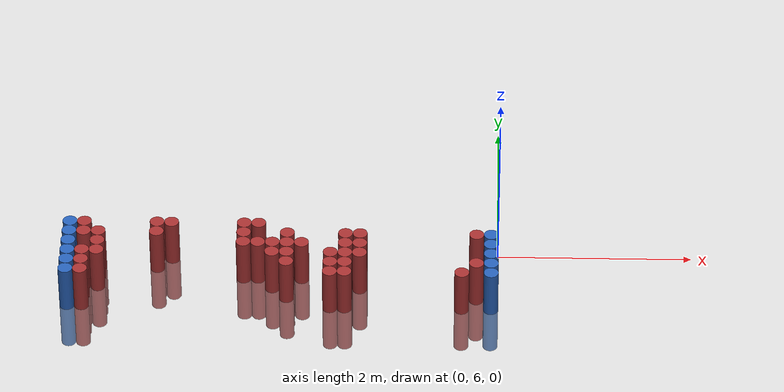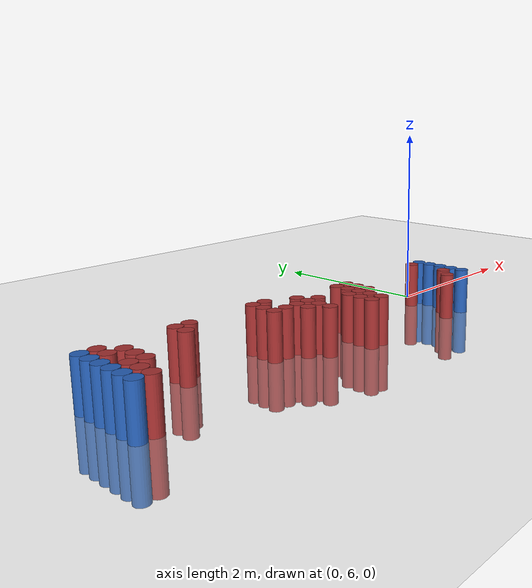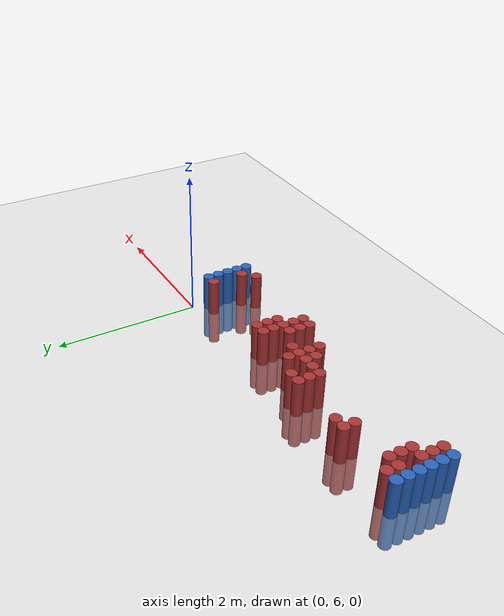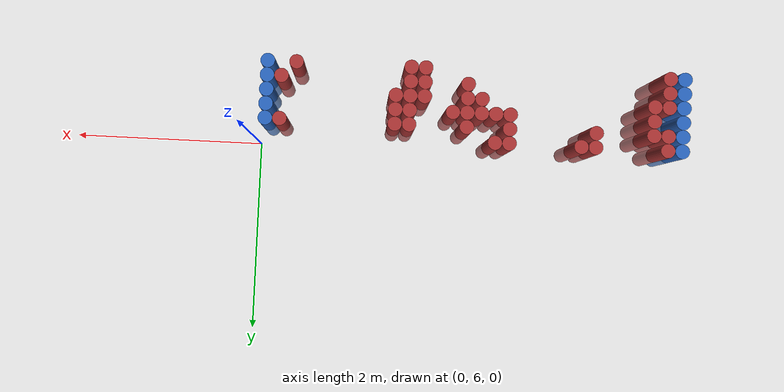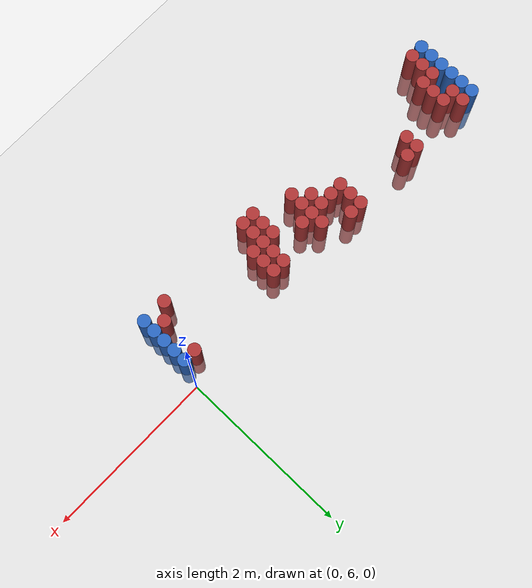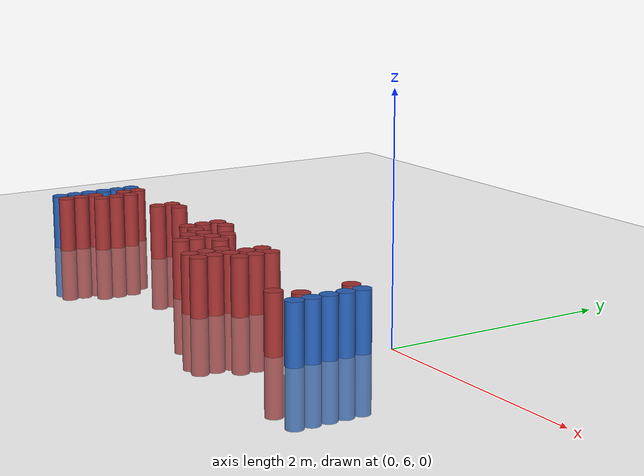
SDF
<sdf version="1.6">
 <world name="default">
  <model name="ground_plane">
   <static>1</static>
   <link name="link">
    <collision name="collision">
     <geometry><plane><normal>0 0 1</normal><size>100 100</size></plane></geometry>
     <surface><friction><ode><mu>100</mu><mu2>50</mu2></ode></friction></surface>
    </collision>
    <visual name="visual">
     <cast_shadows>0</cast_shadows>
     <geometry><plane><normal>0 0 1</normal><size>100 100</size></plane></geometry>
     <material>
      <script><uri>file://media/materials/scripts/gazebo.material</uri><name>Gazebo/Grey</name></script>
     </material>
    </visual>
   </link>
  </model>
  <model name="unit_cylinder_96">
   <static>1</static>
   <pose>-4.425000 5.175000 0.000000 0.000000 0.000000 0.000000</pose>
   <link name="link">
    <inertial>
     <mass>1</mass>
     <inertia><ixx>0.145833</ixx><ixy>0</ixy><ixz>0</ixz><iyy>0.145833</iyy><iyz>0</iyz><izz>0.125</izz></inertia>
    </inertial>
    <collision name="collision">
     <geometry><cylinder><radius>0.075000</radius><length>1</length></cylinder></geometry>
    </collision>
    <visual name="visual">
     <geometry><cylinder><radius>0.075000</radius><length>1</length></cylinder></geometry>
     <material>
      <ambient>0.152000 0.379000 0.720000 1</ambient>
      <diffuse>0.152000 0.379000 0.720000 1</diffuse>
     </material>
     <material>
      <script><name>Gazebo/Grey</name><uri>file://media/materials/scripts/gazebo.material</uri></script>
     </material>
    </visual>
   </link>
  </model>
  <model name="unit_cylinder_97">
   <static>1</static>
   <pose>-4.425000 5.325000 0.000000 0.000000 0.000000 0.000000</pose>
   <link name="link">
    <inertial>
     <mass>1</mass>
     <inertia><ixx>0.145833</ixx><ixy>0</ixy><ixz>0</ixz><iyy>0.145833</iyy><iyz>0</iyz><izz>0.125</izz></inertia>
    </inertial>
    <collision name="collision">
     <geometry><cylinder><radius>0.075000</radius><length>1</length></cylinder></geometry>
    </collision>
    <visual name="visual">
     <geometry><cylinder><radius>0.075000</radius><length>1</length></cylinder></geometry>
     <material>
      <ambient>0.152000 0.379000 0.720000 1</ambient>
      <diffuse>0.152000 0.379000 0.720000 1</diffuse>
     </material>
     <material>
      <script><name>Gazebo/Grey</name><uri>file://media/materials/scripts/gazebo.material</uri></script>
     </material>
    </visual>
   </link>
  </model>
  <model name="unit_cylinder_98">
   <static>1</static>
   <pose>-4.425000 5.475000 0.000000 0.000000 0.000000 0.000000</pose>
   <link name="link">
    <inertial>
     <mass>1</mass>
     <inertia><ixx>0.145833</ixx><ixy>0</ixy><ixz>0</ixz><iyy>0.145833</iyy><iyz>0</iyz><izz>0.125</izz></inertia>
    </inertial>
    <collision name="collision">
     <geometry><cylinder><radius>0.075000</radius><length>1</length></cylinder></geometry>
    </collision>
    <visual name="visual">
     <geometry><cylinder><radius>0.075000</radius><length>1</length></cylinder></geometry>
     <material>
      <ambient>0.152000 0.379000 0.720000 1</ambient>
      <diffuse>0.152000 0.379000 0.720000 1</diffuse>
     </material>
     <material>
      <script><name>Gazebo/Grey</name><uri>file://media/materials/scripts/gazebo.material</uri></script>
     </material>
    </visual>
   </link>
  </model>
  <model name="unit_cylinder_99">
   <static>1</static>
   <pose>-4.425000 5.625000 0.000000 0.000000 0.000000 0.000000</pose>
   <link name="link">
    <inertial>
     <mass>1</mass>
     <inertia><ixx>0.145833</ixx><ixy>0</ixy><ixz>0</ixz><iyy>0.145833</iyy><iyz>0</iyz><izz>0.125</izz></inertia>
    </inertial>
    <collision name="collision">
     <geometry><cylinder><radius>0.075000</radius><length>1</length></cylinder></geometry>
    </collision>
    <visual name="visual">
     <geometry><cylinder><radius>0.075000</radius><length>1</length></cylinder></geometry>
     <material>
      <ambient>0.152000 0.379000 0.720000 1</ambient>
      <diffuse>0.152000 0.379000 0.720000 1</diffuse>
     </material>
     <material>
      <script><name>Gazebo/Grey</name><uri>file://media/materials/scripts/gazebo.material</uri></script>
     </material>
    </visual>
   </link>
  </model>
  <model name="unit_cylinder_100">
   <static>1</static>
   <pose>-4.425000 5.775000 0.000000 0.000000 0.000000 0.000000</pose>
   <link name="link">
    <inertial>
     <mass>1</mass>
     <inertia><ixx>0.145833</ixx><ixy>0</ixy><ixz>0</ixz><iyy>0.145833</iyy><iyz>0</iyz><izz>0.125</izz></inertia>
    </inertial>
    <collision name="collision">
     <geometry><cylinder><radius>0.075000</radius><length>1</length></cylinder></geometry>
    </collision>
    <visual name="visual">
     <geometry><cylinder><radius>0.075000</radius><length>1</length></cylinder></geometry>
     <material>
      <ambient>0.152000 0.379000 0.720000 1</ambient>
      <diffuse>0.152000 0.379000 0.720000 1</diffuse>
     </material>
     <material>
      <script><name>Gazebo/Grey</name><uri>file://media/materials/scripts/gazebo.material</uri></script>
     </material>
    </visual>
   </link>
  </model>
  <model name="unit_cylinder_101">
   <static>1</static>
   <pose>-4.425000 5.925000 0.000000 0.000000 0.000000 0.000000</pose>
   <link name="link">
    <inertial>
     <mass>1</mass>
     <inertia><ixx>0.145833</ixx><ixy>0</ixy><ixz>0</ixz><iyy>0.145833</iyy><iyz>0</iyz><izz>0.125</izz></inertia>
    </inertial>
    <collision name="collision">
     <geometry><cylinder><radius>0.075000</radius><length>1</length></cylinder></geometry>
    </collision>
    <visual name="visual">
     <geometry><cylinder><radius>0.075000</radius><length>1</length></cylinder></geometry>
     <material>
      <ambient>0.152000 0.379000 0.720000 1</ambient>
      <diffuse>0.152000 0.379000 0.720000 1</diffuse>
     </material>
     <material>
      <script><name>Gazebo/Grey</name><uri>file://media/materials/scripts/gazebo.material</uri></script>
     </material>
    </visual>
   </link>
  </model>
  <model name="unit_cylinder_126">
   <static>1</static>
   <pose>-4.275000 5.175000 0.000000 0.000000 0.000000 0.000000</pose>
   <link name="link">
    <inertial>
     <mass>1</mass>
     <inertia><ixx>0.145833</ixx><ixy>0</ixy><ixz>0</ixz><iyy>0.145833</iyy><iyz>0</iyz><izz>0.125</izz></inertia>
    </inertial>
    <collision name="collision">
     <geometry><cylinder><radius>0.075000</radius><length>1</length></cylinder></geometry>
    </collision>
    <visual name="visual">
     <geometry><cylinder><radius>0.075000</radius><length>1</length></cylinder></geometry>
     <material>
      <ambient>0.648000 0.192000 0.192000 1</ambient>
      <diffuse>0.648000 0.192000 0.192000 1</diffuse>
     </material>
     <material>
      <script><name>Gazebo/Grey</name><uri>file://media/materials/scripts/gazebo.material</uri></script>
     </material>
    </visual>
   </link>
  </model>
  <model name="unit_cylinder_127">
   <static>1</static>
   <pose>-4.275000 5.325000 0.000000 0.000000 0.000000 0.000000</pose>
   <link name="link">
    <inertial>
     <mass>1</mass>
     <inertia><ixx>0.145833</ixx><ixy>0</ixy><ixz>0</ixz><iyy>0.145833</iyy><iyz>0</iyz><izz>0.125</izz></inertia>
    </inertial>
    <collision name="collision">
     <geometry><cylinder><radius>0.075000</radius><length>1</length></cylinder></geometry>
    </collision>
    <visual name="visual">
     <geometry><cylinder><radius>0.075000</radius><length>1</length></cylinder></geometry>
     <material>
      <ambient>0.648000 0.192000 0.192000 1</ambient>
      <diffuse>0.648000 0.192000 0.192000 1</diffuse>
     </material>
     <material>
      <script><name>Gazebo/Grey</name><uri>file://media/materials/scripts/gazebo.material</uri></script>
     </material>
    </visual>
   </link>
  </model>
  <model name="unit_cylinder_128">
   <static>1</static>
   <pose>-4.275000 5.475000 0.000000 0.000000 0.000000 0.000000</pose>
   <link name="link">
    <inertial>
     <mass>1</mass>
     <inertia><ixx>0.145833</ixx><ixy>0</ixy><ixz>0</ixz><iyy>0.145833</iyy><iyz>0</iyz><izz>0.125</izz></inertia>
    </inertial>
    <collision name="collision">
     <geometry><cylinder><radius>0.075000</radius><length>1</length></cylinder></geometry>
    </collision>
    <visual name="visual">
     <geometry><cylinder><radius>0.075000</radius><length>1</length></cylinder></geometry>
     <material>
      <ambient>0.648000 0.192000 0.192000 1</ambient>
      <diffuse>0.648000 0.192000 0.192000 1</diffuse>
     </material>
     <material>
      <script><name>Gazebo/Grey</name><uri>file://media/materials/scripts/gazebo.material</uri></script>
     </material>
    </visual>
   </link>
  </model>
  <model name="unit_cylinder_129">
   <static>1</static>
   <pose>-4.275000 5.775000 0.000000 0.000000 0.000000 0.000000</pose>
   <link name="link">
    <inertial>
     <mass>1</mass>
     <inertia><ixx>0.145833</ixx><ixy>0</ixy><ixz>0</ixz><iyy>0.145833</iyy><iyz>0</iyz><izz>0.125</izz></inertia>
    </inertial>
    <collision name="collision">
     <geometry><cylinder><radius>0.075000</radius><length>1</length></cylinder></geometry>
    </collision>
    <visual name="visual">
     <geometry><cylinder><radius>0.075000</radius><length>1</length></cylinder></geometry>
     <material>
      <ambient>0.648000 0.192000 0.192000 1</ambient>
      <diffuse>0.648000 0.192000 0.192000 1</diffuse>
     </material>
     <material>
      <script><name>Gazebo/Grey</name><uri>file://media/materials/scripts/gazebo.material</uri></script>
     </material>
    </visual>
   </link>
  </model>
  <model name="unit_cylinder_130">
   <static>1</static>
   <pose>-4.275000 5.925000 0.000000 0.000000 0.000000 0.000000</pose>
   <link name="link">
    <inertial>
     <mass>1</mass>
     <inertia><ixx>0.145833</ixx><ixy>0</ixy><ixz>0</ixz><iyy>0.145833</iyy><iyz>0</iyz><izz>0.125</izz></inertia>
    </inertial>
    <collision name="collision">
     <geometry><cylinder><radius>0.075000</radius><length>1</length></cylinder></geometry>
    </collision>
    <visual name="visual">
     <geometry><cylinder><radius>0.075000</radius><length>1</length></cylinder></geometry>
     <material>
      <ambient>0.648000 0.192000 0.192000 1</ambient>
      <diffuse>0.648000 0.192000 0.192000 1</diffuse>
     </material>
     <material>
      <script><name>Gazebo/Grey</name><uri>file://media/materials/scripts/gazebo.material</uri></script>
     </material>
    </visual>
   </link>
  </model>
  <model name="unit_cylinder_139">
   <static>1</static>
   <pose>-4.125000 5.475000 0.000000 0.000000 0.000000 0.000000</pose>
   <link name="link">
    <inertial>
     <mass>1</mass>
     <inertia><ixx>0.145833</ixx><ixy>0</ixy><ixz>0</ixz><iyy>0.145833</iyy><iyz>0</iyz><izz>0.125</izz></inertia>
    </inertial>
    <collision name="collision">
     <geometry><cylinder><radius>0.075000</radius><length>1</length></cylinder></geometry>
    </collision>
    <visual name="visual">
     <geometry><cylinder><radius>0.075000</radius><length>1</length></cylinder></geometry>
     <material>
      <ambient>0.648000 0.192000 0.192000 1</ambient>
      <diffuse>0.648000 0.192000 0.192000 1</diffuse>
     </material>
     <material>
      <script><name>Gazebo/Grey</name><uri>file://media/materials/scripts/gazebo.material</uri></script>
     </material>
    </visual>
   </link>
  </model>
  <model name="unit_cylinder_140">
   <static>1</static>
   <pose>-4.125000 5.625000 0.000000 0.000000 0.000000 0.000000</pose>
   <link name="link">
    <inertial>
     <mass>1</mass>
     <inertia><ixx>0.145833</ixx><ixy>0</ixy><ixz>0</ixz><iyy>0.145833</iyy><iyz>0</iyz><izz>0.125</izz></inertia>
    </inertial>
    <collision name="collision">
     <geometry><cylinder><radius>0.075000</radius><length>1</length></cylinder></geometry>
    </collision>
    <visual name="visual">
     <geometry><cylinder><radius>0.075000</radius><length>1</length></cylinder></geometry>
     <material>
      <ambient>0.648000 0.192000 0.192000 1</ambient>
      <diffuse>0.648000 0.192000 0.192000 1</diffuse>
     </material>
     <material>
      <script><name>Gazebo/Grey</name><uri>file://media/materials/scripts/gazebo.material</uri></script>
     </material>
    </visual>
   </link>
  </model>
  <model name="unit_cylinder_141">
   <static>1</static>
   <pose>-4.125000 5.775000 0.000000 0.000000 0.000000 0.000000</pose>
   <link name="link">
    <inertial>
     <mass>1</mass>
     <inertia><ixx>0.145833</ixx><ixy>0</ixy><ixz>0</ixz><iyy>0.145833</iyy><iyz>0</iyz><izz>0.125</izz></inertia>
    </inertial>
    <collision name="collision">
     <geometry><cylinder><radius>0.075000</radius><length>1</length></cylinder></geometry>
    </collision>
    <visual name="visual">
     <geometry><cylinder><radius>0.075000</radius><length>1</length></cylinder></geometry>
     <material>
      <ambient>0.648000 0.192000 0.192000 1</ambient>
      <diffuse>0.648000 0.192000 0.192000 1</diffuse>
     </material>
     <material>
      <script><name>Gazebo/Grey</name><uri>file://media/materials/scripts/gazebo.material</uri></script>
     </material>
    </visual>
   </link>
  </model>
  <model name="unit_cylinder_170">
   <static>1</static>
   <pose>-3.525000 5.775000 0.000000 0.000000 0.000000 0.000000</pose>
   <link name="link">
    <inertial>
     <mass>1</mass>
     <inertia><ixx>0.145833</ixx><ixy>0</ixy><ixz>0</ixz><iyy>0.145833</iyy><iyz>0</iyz><izz>0.125</izz></inertia>
    </inertial>
    <collision name="collision">
     <geometry><cylinder><radius>0.075000</radius><length>1</length></cylinder></geometry>
    </collision>
    <visual name="visual">
     <geometry><cylinder><radius>0.075000</radius><length>1</length></cylinder></geometry>
     <material>
      <ambient>0.648000 0.192000 0.192000 1</ambient>
      <diffuse>0.648000 0.192000 0.192000 1</diffuse>
     </material>
     <material>
      <script><name>Gazebo/Grey</name><uri>file://media/materials/scripts/gazebo.material</uri></script>
     </material>
    </visual>
   </link>
  </model>
  <model name="unit_cylinder_171">
   <static>1</static>
   <pose>-3.525000 5.925000 0.000000 0.000000 0.000000 0.000000</pose>
   <link name="link">
    <inertial>
     <mass>1</mass>
     <inertia><ixx>0.145833</ixx><ixy>0</ixy><ixz>0</ixz><iyy>0.145833</iyy><iyz>0</iyz><izz>0.125</izz></inertia>
    </inertial>
    <collision name="collision">
     <geometry><cylinder><radius>0.075000</radius><length>1</length></cylinder></geometry>
    </collision>
    <visual name="visual">
     <geometry><cylinder><radius>0.075000</radius><length>1</length></cylinder></geometry>
     <material>
      <ambient>0.648000 0.192000 0.192000 1</ambient>
      <diffuse>0.648000 0.192000 0.192000 1</diffuse>
     </material>
     <material>
      <script><name>Gazebo/Grey</name><uri>file://media/materials/scripts/gazebo.material</uri></script>
     </material>
    </visual>
   </link>
  </model>
  <model name="unit_cylinder_184">
   <static>1</static>
   <pose>-3.375000 5.925000 0.000000 0.000000 0.000000 0.000000</pose>
   <link name="link">
    <inertial>
     <mass>1</mass>
     <inertia><ixx>0.145833</ixx><ixy>0</ixy><ixz>0</ixz><iyy>0.145833</iyy><iyz>0</iyz><izz>0.125</izz></inertia>
    </inertial>
    <collision name="collision">
     <geometry><cylinder><radius>0.075000</radius><length>1</length></cylinder></geometry>
    </collision>
    <visual name="visual">
     <geometry><cylinder><radius>0.075000</radius><length>1</length></cylinder></geometry>
     <material>
      <ambient>0.648000 0.192000 0.192000 1</ambient>
      <diffuse>0.648000 0.192000 0.192000 1</diffuse>
     </material>
     <material>
      <script><name>Gazebo/Grey</name><uri>file://media/materials/scripts/gazebo.material</uri></script>
     </material>
    </visual>
   </link>
  </model>
  <model name="unit_cylinder_213">
   <static>1</static>
   <pose>-2.625000 5.625000 0.000000 0.000000 0.000000 0.000000</pose>
   <link name="link">
    <inertial>
     <mass>1</mass>
     <inertia><ixx>0.145833</ixx><ixy>0</ixy><ixz>0</ixz><iyy>0.145833</iyy><iyz>0</iyz><izz>0.125</izz></inertia>
    </inertial>
    <collision name="collision">
     <geometry><cylinder><radius>0.075000</radius><length>1</length></cylinder></geometry>
    </collision>
    <visual name="visual">
     <geometry><cylinder><radius>0.075000</radius><length>1</length></cylinder></geometry>
     <material>
      <ambient>0.648000 0.192000 0.192000 1</ambient>
      <diffuse>0.648000 0.192000 0.192000 1</diffuse>
     </material>
     <material>
      <script><name>Gazebo/Grey</name><uri>file://media/materials/scripts/gazebo.material</uri></script>
     </material>
    </visual>
   </link>
  </model>
  <model name="unit_cylinder_214">
   <static>1</static>
   <pose>-2.625000 5.775000 0.000000 0.000000 0.000000 0.000000</pose>
   <link name="link">
    <inertial>
     <mass>1</mass>
     <inertia><ixx>0.145833</ixx><ixy>0</ixy><ixz>0</ixz><iyy>0.145833</iyy><iyz>0</iyz><izz>0.125</izz></inertia>
    </inertial>
    <collision name="collision">
     <geometry><cylinder><radius>0.075000</radius><length>1</length></cylinder></geometry>
    </collision>
    <visual name="visual">
     <geometry><cylinder><radius>0.075000</radius><length>1</length></cylinder></geometry>
     <material>
      <ambient>0.648000 0.192000 0.192000 1</ambient>
      <diffuse>0.648000 0.192000 0.192000 1</diffuse>
     </material>
     <material>
      <script><name>Gazebo/Grey</name><uri>file://media/materials/scripts/gazebo.material</uri></script>
     </material>
    </visual>
   </link>
  </model>
  <model name="unit_cylinder_215">
   <static>1</static>
   <pose>-2.625000 5.925000 0.000000 0.000000 0.000000 0.000000</pose>
   <link name="link">
    <inertial>
     <mass>1</mass>
     <inertia><ixx>0.145833</ixx><ixy>0</ixy><ixz>0</ixz><iyy>0.145833</iyy><iyz>0</iyz><izz>0.125</izz></inertia>
    </inertial>
    <collision name="collision">
     <geometry><cylinder><radius>0.075000</radius><length>1</length></cylinder></geometry>
    </collision>
    <visual name="visual">
     <geometry><cylinder><radius>0.075000</radius><length>1</length></cylinder></geometry>
     <material>
      <ambient>0.648000 0.192000 0.192000 1</ambient>
      <diffuse>0.648000 0.192000 0.192000 1</diffuse>
     </material>
     <material>
      <script><name>Gazebo/Grey</name><uri>file://media/materials/scripts/gazebo.material</uri></script>
     </material>
    </visual>
   </link>
  </model>
  <model name="unit_cylinder_226">
   <static>1</static>
   <pose>-2.475000 5.625000 0.000000 0.000000 0.000000 0.000000</pose>
   <link name="link">
    <inertial>
     <mass>1</mass>
     <inertia><ixx>0.145833</ixx><ixy>0</ixy><ixz>0</ixz><iyy>0.145833</iyy><iyz>0</iyz><izz>0.125</izz></inertia>
    </inertial>
    <collision name="collision">
     <geometry><cylinder><radius>0.075000</radius><length>1</length></cylinder></geometry>
    </collision>
    <visual name="visual">
     <geometry><cylinder><radius>0.075000</radius><length>1</length></cylinder></geometry>
     <material>
      <ambient>0.648000 0.192000 0.192000 1</ambient>
      <diffuse>0.648000 0.192000 0.192000 1</diffuse>
     </material>
     <material>
      <script><name>Gazebo/Grey</name><uri>file://media/materials/scripts/gazebo.material</uri></script>
     </material>
    </visual>
   </link>
  </model>
  <model name="unit_cylinder_227">
   <static>1</static>
   <pose>-2.475000 5.925000 0.000000 0.000000 0.000000 0.000000</pose>
   <link name="link">
    <inertial>
     <mass>1</mass>
     <inertia><ixx>0.145833</ixx><ixy>0</ixy><ixz>0</ixz><iyy>0.145833</iyy><iyz>0</iyz><izz>0.125</izz></inertia>
    </inertial>
    <collision name="collision">
     <geometry><cylinder><radius>0.075000</radius><length>1</length></cylinder></geometry>
    </collision>
    <visual name="visual">
     <geometry><cylinder><radius>0.075000</radius><length>1</length></cylinder></geometry>
     <material>
      <ambient>0.648000 0.192000 0.192000 1</ambient>
      <diffuse>0.648000 0.192000 0.192000 1</diffuse>
     </material>
     <material>
      <script><name>Gazebo/Grey</name><uri>file://media/materials/scripts/gazebo.material</uri></script>
     </material>
    </visual>
   </link>
  </model>
  <model name="unit_cylinder_238">
   <static>1</static>
   <pose>-2.325000 5.475000 0.000000 0.000000 0.000000 0.000000</pose>
   <link name="link">
    <inertial>
     <mass>1</mass>
     <inertia><ixx>0.145833</ixx><ixy>0</ixy><ixz>0</ixz><iyy>0.145833</iyy><iyz>0</iyz><izz>0.125</izz></inertia>
    </inertial>
    <collision name="collision">
     <geometry><cylinder><radius>0.075000</radius><length>1</length></cylinder></geometry>
    </collision>
    <visual name="visual">
     <geometry><cylinder><radius>0.075000</radius><length>1</length></cylinder></geometry>
     <material>
      <ambient>0.648000 0.192000 0.192000 1</ambient>
      <diffuse>0.648000 0.192000 0.192000 1</diffuse>
     </material>
     <material>
      <script><name>Gazebo/Grey</name><uri>file://media/materials/scripts/gazebo.material</uri></script>
     </material>
    </visual>
   </link>
  </model>
  <model name="unit_cylinder_239">
   <static>1</static>
   <pose>-2.325000 5.625000 0.000000 0.000000 0.000000 0.000000</pose>
   <link name="link">
    <inertial>
     <mass>1</mass>
     <inertia><ixx>0.145833</ixx><ixy>0</ixy><ixz>0</ixz><iyy>0.145833</iyy><iyz>0</iyz><izz>0.125</izz></inertia>
    </inertial>
    <collision name="collision">
     <geometry><cylinder><radius>0.075000</radius><length>1</length></cylinder></geometry>
    </collision>
    <visual name="visual">
     <geometry><cylinder><radius>0.075000</radius><length>1</length></cylinder></geometry>
     <material>
      <ambient>0.648000 0.192000 0.192000 1</ambient>
      <diffuse>0.648000 0.192000 0.192000 1</diffuse>
     </material>
     <material>
      <script><name>Gazebo/Grey</name><uri>file://media/materials/scripts/gazebo.material</uri></script>
     </material>
    </visual>
   </link>
  </model>
  <model name="unit_cylinder_244">
   <static>1</static>
   <pose>-2.175000 5.325000 0.000000 0.000000 0.000000 0.000000</pose>
   <link name="link">
    <inertial>
     <mass>1</mass>
     <inertia><ixx>0.145833</ixx><ixy>0</ixy><ixz>0</ixz><iyy>0.145833</iyy><iyz>0</iyz><izz>0.125</izz></inertia>
    </inertial>
    <collision name="collision">
     <geometry><cylinder><radius>0.075000</radius><length>1</length></cylinder></geometry>
    </collision>
    <visual name="visual">
     <geometry><cylinder><radius>0.075000</radius><length>1</length></cylinder></geometry>
     <material>
      <ambient>0.648000 0.192000 0.192000 1</ambient>
      <diffuse>0.648000 0.192000 0.192000 1</diffuse>
     </material>
     <material>
      <script><name>Gazebo/Grey</name><uri>file://media/materials/scripts/gazebo.material</uri></script>
     </material>
    </visual>
   </link>
  </model>
  <model name="unit_cylinder_245">
   <static>1</static>
   <pose>-2.175000 5.475000 0.000000 0.000000 0.000000 0.000000</pose>
   <link name="link">
    <inertial>
     <mass>1</mass>
     <inertia><ixx>0.145833</ixx><ixy>0</ixy><ixz>0</ixz><iyy>0.145833</iyy><iyz>0</iyz><izz>0.125</izz></inertia>
    </inertial>
    <collision name="collision">
     <geometry><cylinder><radius>0.075000</radius><length>1</length></cylinder></geometry>
    </collision>
    <visual name="visual">
     <geometry><cylinder><radius>0.075000</radius><length>1</length></cylinder></geometry>
     <material>
      <ambient>0.648000 0.192000 0.192000 1</ambient>
      <diffuse>0.648000 0.192000 0.192000 1</diffuse>
     </material>
     <material>
      <script><name>Gazebo/Grey</name><uri>file://media/materials/scripts/gazebo.material</uri></script>
     </material>
    </visual>
   </link>
  </model>
  <model name="unit_cylinder_246">
   <static>1</static>
   <pose>-2.175000 5.625000 0.000000 0.000000 0.000000 0.000000</pose>
   <link name="link">
    <inertial>
     <mass>1</mass>
     <inertia><ixx>0.145833</ixx><ixy>0</ixy><ixz>0</ixz><iyy>0.145833</iyy><iyz>0</iyz><izz>0.125</izz></inertia>
    </inertial>
    <collision name="collision">
     <geometry><cylinder><radius>0.075000</radius><length>1</length></cylinder></geometry>
    </collision>
    <visual name="visual">
     <geometry><cylinder><radius>0.075000</radius><length>1</length></cylinder></geometry>
     <material>
      <ambient>0.648000 0.192000 0.192000 1</ambient>
      <diffuse>0.648000 0.192000 0.192000 1</diffuse>
     </material>
     <material>
      <script><name>Gazebo/Grey</name><uri>file://media/materials/scripts/gazebo.material</uri></script>
     </material>
    </visual>
   </link>
  </model>
  <model name="unit_cylinder_247">
   <static>1</static>
   <pose>-2.175000 5.775000 0.000000 0.000000 0.000000 0.000000</pose>
   <link name="link">
    <inertial>
     <mass>1</mass>
     <inertia><ixx>0.145833</ixx><ixy>0</ixy><ixz>0</ixz><iyy>0.145833</iyy><iyz>0</iyz><izz>0.125</izz></inertia>
    </inertial>
    <collision name="collision">
     <geometry><cylinder><radius>0.075000</radius><length>1</length></cylinder></geometry>
    </collision>
    <visual name="visual">
     <geometry><cylinder><radius>0.075000</radius><length>1</length></cylinder></geometry>
     <material>
      <ambient>0.648000 0.192000 0.192000 1</ambient>
      <diffuse>0.648000 0.192000 0.192000 1</diffuse>
     </material>
     <material>
      <script><name>Gazebo/Grey</name><uri>file://media/materials/scripts/gazebo.material</uri></script>
     </material>
    </visual>
   </link>
  </model>
  <model name="unit_cylinder_253">
   <static>1</static>
   <pose>-2.025000 5.625000 0.000000 0.000000 0.000000 0.000000</pose>
   <link name="link">
    <inertial>
     <mass>1</mass>
     <inertia><ixx>0.145833</ixx><ixy>0</ixy><ixz>0</ixz><iyy>0.145833</iyy><iyz>0</iyz><izz>0.125</izz></inertia>
    </inertial>
    <collision name="collision">
     <geometry><cylinder><radius>0.075000</radius><length>1</length></cylinder></geometry>
    </collision>
    <visual name="visual">
     <geometry><cylinder><radius>0.075000</radius><length>1</length></cylinder></geometry>
     <material>
      <ambient>0.648000 0.192000 0.192000 1</ambient>
      <diffuse>0.648000 0.192000 0.192000 1</diffuse>
     </material>
     <material>
      <script><name>Gazebo/Grey</name><uri>file://media/materials/scripts/gazebo.material</uri></script>
     </material>
    </visual>
   </link>
  </model>
  <model name="unit_cylinder_260">
   <static>1</static>
   <pose>-1.725000 5.175000 0.000000 0.000000 0.000000 0.000000</pose>
   <link name="link">
    <inertial>
     <mass>1</mass>
     <inertia><ixx>0.145833</ixx><ixy>0</ixy><ixz>0</ixz><iyy>0.145833</iyy><iyz>0</iyz><izz>0.125</izz></inertia>
    </inertial>
    <collision name="collision">
     <geometry><cylinder><radius>0.075000</radius><length>1</length></cylinder></geometry>
    </collision>
    <visual name="visual">
     <geometry><cylinder><radius>0.075000</radius><length>1</length></cylinder></geometry>
     <material>
      <ambient>0.648000 0.192000 0.192000 1</ambient>
      <diffuse>0.648000 0.192000 0.192000 1</diffuse>
     </material>
     <material>
      <script><name>Gazebo/Grey</name><uri>file://media/materials/scripts/gazebo.material</uri></script>
     </material>
    </visual>
   </link>
  </model>
  <model name="unit_cylinder_261">
   <static>1</static>
   <pose>-1.725000 5.325000 0.000000 0.000000 0.000000 0.000000</pose>
   <link name="link">
    <inertial>
     <mass>1</mass>
     <inertia><ixx>0.145833</ixx><ixy>0</ixy><ixz>0</ixz><iyy>0.145833</iyy><iyz>0</iyz><izz>0.125</izz></inertia>
    </inertial>
    <collision name="collision">
     <geometry><cylinder><radius>0.075000</radius><length>1</length></cylinder></geometry>
    </collision>
    <visual name="visual">
     <geometry><cylinder><radius>0.075000</radius><length>1</length></cylinder></geometry>
     <material>
      <ambient>0.648000 0.192000 0.192000 1</ambient>
      <diffuse>0.648000 0.192000 0.192000 1</diffuse>
     </material>
     <material>
      <script><name>Gazebo/Grey</name><uri>file://media/materials/scripts/gazebo.material</uri></script>
     </material>
    </visual>
   </link>
  </model>
  <model name="unit_cylinder_262">
   <static>1</static>
   <pose>-1.725000 5.475000 0.000000 0.000000 0.000000 0.000000</pose>
   <link name="link">
    <inertial>
     <mass>1</mass>
     <inertia><ixx>0.145833</ixx><ixy>0</ixy><ixz>0</ixz><iyy>0.145833</iyy><iyz>0</iyz><izz>0.125</izz></inertia>
    </inertial>
    <collision name="collision">
     <geometry><cylinder><radius>0.075000</radius><length>1</length></cylinder></geometry>
    </collision>
    <visual name="visual">
     <geometry><cylinder><radius>0.075000</radius><length>1</length></cylinder></geometry>
     <material>
      <ambient>0.648000 0.192000 0.192000 1</ambient>
      <diffuse>0.648000 0.192000 0.192000 1</diffuse>
     </material>
     <material>
      <script><name>Gazebo/Grey</name><uri>file://media/materials/scripts/gazebo.material</uri></script>
     </material>
    </visual>
   </link>
  </model>
  <model name="unit_cylinder_263">
   <static>1</static>
   <pose>-1.575000 5.175000 0.000000 0.000000 0.000000 0.000000</pose>
   <link name="link">
    <inertial>
     <mass>1</mass>
     <inertia><ixx>0.145833</ixx><ixy>0</ixy><ixz>0</ixz><iyy>0.145833</iyy><iyz>0</iyz><izz>0.125</izz></inertia>
    </inertial>
    <collision name="collision">
     <geometry><cylinder><radius>0.075000</radius><length>1</length></cylinder></geometry>
    </collision>
    <visual name="visual">
     <geometry><cylinder><radius>0.075000</radius><length>1</length></cylinder></geometry>
     <material>
      <ambient>0.648000 0.192000 0.192000 1</ambient>
      <diffuse>0.648000 0.192000 0.192000 1</diffuse>
     </material>
     <material>
      <script><name>Gazebo/Grey</name><uri>file://media/materials/scripts/gazebo.material</uri></script>
     </material>
    </visual>
   </link>
  </model>
  <model name="unit_cylinder_264">
   <static>1</static>
   <pose>-1.575000 5.325000 0.000000 0.000000 0.000000 0.000000</pose>
   <link name="link">
    <inertial>
     <mass>1</mass>
     <inertia><ixx>0.145833</ixx><ixy>0</ixy><ixz>0</ixz><iyy>0.145833</iyy><iyz>0</iyz><izz>0.125</izz></inertia>
    </inertial>
    <collision name="collision">
     <geometry><cylinder><radius>0.075000</radius><length>1</length></cylinder></geometry>
    </collision>
    <visual name="visual">
     <geometry><cylinder><radius>0.075000</radius><length>1</length></cylinder></geometry>
     <material>
      <ambient>0.648000 0.192000 0.192000 1</ambient>
      <diffuse>0.648000 0.192000 0.192000 1</diffuse>
     </material>
     <material>
      <script><name>Gazebo/Grey</name><uri>file://media/materials/scripts/gazebo.material</uri></script>
     </material>
    </visual>
   </link>
  </model>
  <model name="unit_cylinder_265">
   <static>1</static>
   <pose>-1.575000 5.475000 0.000000 0.000000 0.000000 0.000000</pose>
   <link name="link">
    <inertial>
     <mass>1</mass>
     <inertia><ixx>0.145833</ixx><ixy>0</ixy><ixz>0</ixz><iyy>0.145833</iyy><iyz>0</iyz><izz>0.125</izz></inertia>
    </inertial>
    <collision name="collision">
     <geometry><cylinder><radius>0.075000</radius><length>1</length></cylinder></geometry>
    </collision>
    <visual name="visual">
     <geometry><cylinder><radius>0.075000</radius><length>1</length></cylinder></geometry>
     <material>
      <ambient>0.648000 0.192000 0.192000 1</ambient>
      <diffuse>0.648000 0.192000 0.192000 1</diffuse>
     </material>
     <material>
      <script><name>Gazebo/Grey</name><uri>file://media/materials/scripts/gazebo.material</uri></script>
     </material>
    </visual>
   </link>
  </model>
  <model name="unit_cylinder_266">
   <static>1</static>
   <pose>-1.575000 5.625000 0.000000 0.000000 0.000000 0.000000</pose>
   <link name="link">
    <inertial>
     <mass>1</mass>
     <inertia><ixx>0.145833</ixx><ixy>0</ixy><ixz>0</ixz><iyy>0.145833</iyy><iyz>0</iyz><izz>0.125</izz></inertia>
    </inertial>
    <collision name="collision">
     <geometry><cylinder><radius>0.075000</radius><length>1</length></cylinder></geometry>
    </collision>
    <visual name="visual">
     <geometry><cylinder><radius>0.075000</radius><length>1</length></cylinder></geometry>
     <material>
      <ambient>0.648000 0.192000 0.192000 1</ambient>
      <diffuse>0.648000 0.192000 0.192000 1</diffuse>
     </material>
     <material>
      <script><name>Gazebo/Grey</name><uri>file://media/materials/scripts/gazebo.material</uri></script>
     </material>
    </visual>
   </link>
  </model>
  <model name="unit_cylinder_267">
   <static>1</static>
   <pose>-1.575000 5.775000 0.000000 0.000000 0.000000 0.000000</pose>
   <link name="link">
    <inertial>
     <mass>1</mass>
     <inertia><ixx>0.145833</ixx><ixy>0</ixy><ixz>0</ixz><iyy>0.145833</iyy><iyz>0</iyz><izz>0.125</izz></inertia>
    </inertial>
    <collision name="collision">
     <geometry><cylinder><radius>0.075000</radius><length>1</length></cylinder></geometry>
    </collision>
    <visual name="visual">
     <geometry><cylinder><radius>0.075000</radius><length>1</length></cylinder></geometry>
     <material>
      <ambient>0.648000 0.192000 0.192000 1</ambient>
      <diffuse>0.648000 0.192000 0.192000 1</diffuse>
     </material>
     <material>
      <script><name>Gazebo/Grey</name><uri>file://media/materials/scripts/gazebo.material</uri></script>
     </material>
    </visual>
   </link>
  </model>
  <model name="unit_cylinder_268">
   <static>1</static>
   <pose>-1.425000 5.475000 0.000000 0.000000 0.000000 0.000000</pose>
   <link name="link">
    <inertial>
     <mass>1</mass>
     <inertia><ixx>0.145833</ixx><ixy>0</ixy><ixz>0</ixz><iyy>0.145833</iyy><iyz>0</iyz><izz>0.125</izz></inertia>
    </inertial>
    <collision name="collision">
     <geometry><cylinder><radius>0.075000</radius><length>1</length></cylinder></geometry>
    </collision>
    <visual name="visual">
     <geometry><cylinder><radius>0.075000</radius><length>1</length></cylinder></geometry>
     <material>
      <ambient>0.648000 0.192000 0.192000 1</ambient>
      <diffuse>0.648000 0.192000 0.192000 1</diffuse>
     </material>
     <material>
      <script><name>Gazebo/Grey</name><uri>file://media/materials/scripts/gazebo.material</uri></script>
     </material>
    </visual>
   </link>
  </model>
  <model name="unit_cylinder_269">
   <static>1</static>
   <pose>-1.425000 5.625000 0.000000 0.000000 0.000000 0.000000</pose>
   <link name="link">
    <inertial>
     <mass>1</mass>
     <inertia><ixx>0.145833</ixx><ixy>0</ixy><ixz>0</ixz><iyy>0.145833</iyy><iyz>0</iyz><izz>0.125</izz></inertia>
    </inertial>
    <collision name="collision">
     <geometry><cylinder><radius>0.075000</radius><length>1</length></cylinder></geometry>
    </collision>
    <visual name="visual">
     <geometry><cylinder><radius>0.075000</radius><length>1</length></cylinder></geometry>
     <material>
      <ambient>0.648000 0.192000 0.192000 1</ambient>
      <diffuse>0.648000 0.192000 0.192000 1</diffuse>
     </material>
     <material>
      <script><name>Gazebo/Grey</name><uri>file://media/materials/scripts/gazebo.material</uri></script>
     </material>
    </visual>
   </link>
  </model>
  <model name="unit_cylinder_270">
   <static>1</static>
   <pose>-1.425000 5.775000 0.000000 0.000000 0.000000 0.000000</pose>
   <link name="link">
    <inertial>
     <mass>1</mass>
     <inertia><ixx>0.145833</ixx><ixy>0</ixy><ixz>0</ixz><iyy>0.145833</iyy><iyz>0</iyz><izz>0.125</izz></inertia>
    </inertial>
    <collision name="collision">
     <geometry><cylinder><radius>0.075000</radius><length>1</length></cylinder></geometry>
    </collision>
    <visual name="visual">
     <geometry><cylinder><radius>0.075000</radius><length>1</length></cylinder></geometry>
     <material>
      <ambient>0.648000 0.192000 0.192000 1</ambient>
      <diffuse>0.648000 0.192000 0.192000 1</diffuse>
     </material>
     <material>
      <script><name>Gazebo/Grey</name><uri>file://media/materials/scripts/gazebo.material</uri></script>
     </material>
    </visual>
   </link>
  </model>
  <model name="unit_cylinder_284">
   <static>1</static>
   <pose>-0.375000 5.175000 0.000000 0.000000 0.000000 0.000000</pose>
   <link name="link">
    <inertial>
     <mass>1</mass>
     <inertia><ixx>0.145833</ixx><ixy>0</ixy><ixz>0</ixz><iyy>0.145833</iyy><iyz>0</iyz><izz>0.125</izz></inertia>
    </inertial>
    <collision name="collision">
     <geometry><cylinder><radius>0.075000</radius><length>1</length></cylinder></geometry>
    </collision>
    <visual name="visual">
     <geometry><cylinder><radius>0.075000</radius><length>1</length></cylinder></geometry>
     <material>
      <ambient>0.648000 0.192000 0.192000 1</ambient>
      <diffuse>0.648000 0.192000 0.192000 1</diffuse>
     </material>
     <material>
      <script><name>Gazebo/Grey</name><uri>file://media/materials/scripts/gazebo.material</uri></script>
     </material>
    </visual>
   </link>
  </model>
  <model name="unit_cylinder_293">
   <static>1</static>
   <pose>-0.225000 5.325000 0.000000 0.000000 0.000000 0.000000</pose>
   <link name="link">
    <inertial>
     <mass>1</mass>
     <inertia><ixx>0.145833</ixx><ixy>0</ixy><ixz>0</ixz><iyy>0.145833</iyy><iyz>0</iyz><izz>0.125</izz></inertia>
    </inertial>
    <collision name="collision">
     <geometry><cylinder><radius>0.075000</radius><length>1</length></cylinder></geometry>
    </collision>
    <visual name="visual">
     <geometry><cylinder><radius>0.075000</radius><length>1</length></cylinder></geometry>
     <material>
      <ambient>0.648000 0.192000 0.192000 1</ambient>
      <diffuse>0.648000 0.192000 0.192000 1</diffuse>
     </material>
     <material>
      <script><name>Gazebo/Grey</name><uri>file://media/materials/scripts/gazebo.material</uri></script>
     </material>
    </visual>
   </link>
  </model>
  <model name="unit_cylinder_294">
   <static>1</static>
   <pose>-0.225000 5.775000 0.000000 0.000000 0.000000 0.000000</pose>
   <link name="link">
    <inertial>
     <mass>1</mass>
     <inertia><ixx>0.145833</ixx><ixy>0</ixy><ixz>0</ixz><iyy>0.145833</iyy><iyz>0</iyz><izz>0.125</izz></inertia>
    </inertial>
    <collision name="collision">
     <geometry><cylinder><radius>0.075000</radius><length>1</length></cylinder></geometry>
    </collision>
    <visual name="visual">
     <geometry><cylinder><radius>0.075000</radius><length>1</length></cylinder></geometry>
     <material>
      <ambient>0.648000 0.192000 0.192000 1</ambient>
      <diffuse>0.648000 0.192000 0.192000 1</diffuse>
     </material>
     <material>
      <script><name>Gazebo/Grey</name><uri>file://media/materials/scripts/gazebo.material</uri></script>
     </material>
    </visual>
   </link>
  </model>
  <model name="unit_cylinder_308">
   <static>1</static>
   <pose>-0.075000 5.175000 0.000000 0.000000 0.000000 0.000000</pose>
   <link name="link">
    <inertial>
     <mass>1</mass>
     <inertia><ixx>0.145833</ixx><ixy>0</ixy><ixz>0</ixz><iyy>0.145833</iyy><iyz>0</iyz><izz>0.125</izz></inertia>
    </inertial>
    <collision name="collision">
     <geometry><cylinder><radius>0.075000</radius><length>1</length></cylinder></geometry>
    </collision>
    <visual name="visual">
     <geometry><cylinder><radius>0.075000</radius><length>1</length></cylinder></geometry>
     <material>
      <ambient>0.152000 0.379000 0.720000 1</ambient>
      <diffuse>0.152000 0.379000 0.720000 1</diffuse>
     </material>
     <material>
      <script><name>Gazebo/Grey</name><uri>file://media/materials/scripts/gazebo.material</uri></script>
     </material>
    </visual>
   </link>
  </model>
  <model name="unit_cylinder_309">
   <static>1</static>
   <pose>-0.075000 5.325000 0.000000 0.000000 0.000000 0.000000</pose>
   <link name="link">
    <inertial>
     <mass>1</mass>
     <inertia><ixx>0.145833</ixx><ixy>0</ixy><ixz>0</ixz><iyy>0.145833</iyy><iyz>0</iyz><izz>0.125</izz></inertia>
    </inertial>
    <collision name="collision">
     <geometry><cylinder><radius>0.075000</radius><length>1</length></cylinder></geometry>
    </collision>
    <visual name="visual">
     <geometry><cylinder><radius>0.075000</radius><length>1</length></cylinder></geometry>
     <material>
      <ambient>0.152000 0.379000 0.720000 1</ambient>
      <diffuse>0.152000 0.379000 0.720000 1</diffuse>
     </material>
     <material>
      <script><name>Gazebo/Grey</name><uri>file://media/materials/scripts/gazebo.material</uri></script>
     </material>
    </visual>
   </link>
  </model>
  <model name="unit_cylinder_310">
   <static>1</static>
   <pose>-0.075000 5.475000 0.000000 0.000000 0.000000 0.000000</pose>
   <link name="link">
    <inertial>
     <mass>1</mass>
     <inertia><ixx>0.145833</ixx><ixy>0</ixy><ixz>0</ixz><iyy>0.145833</iyy><iyz>0</iyz><izz>0.125</izz></inertia>
    </inertial>
    <collision name="collision">
     <geometry><cylinder><radius>0.075000</radius><length>1</length></cylinder></geometry>
    </collision>
    <visual name="visual">
     <geometry><cylinder><radius>0.075000</radius><length>1</length></cylinder></geometry>
     <material>
      <ambient>0.152000 0.379000 0.720000 1</ambient>
      <diffuse>0.152000 0.379000 0.720000 1</diffuse>
     </material>
     <material>
      <script><name>Gazebo/Grey</name><uri>file://media/materials/scripts/gazebo.material</uri></script>
     </material>
    </visual>
   </link>
  </model>
  <model name="unit_cylinder_311">
   <static>1</static>
   <pose>-0.075000 5.625000 0.000000 0.000000 0.000000 0.000000</pose>
   <link name="link">
    <inertial>
     <mass>1</mass>
     <inertia><ixx>0.145833</ixx><ixy>0</ixy><ixz>0</ixz><iyy>0.145833</iyy><iyz>0</iyz><izz>0.125</izz></inertia>
    </inertial>
    <collision name="collision">
     <geometry><cylinder><radius>0.075000</radius><length>1</length></cylinder></geometry>
    </collision>
    <visual name="visual">
     <geometry><cylinder><radius>0.075000</radius><length>1</length></cylinder></geometry>
     <material>
      <ambient>0.152000 0.379000 0.720000 1</ambient>
      <diffuse>0.152000 0.379000 0.720000 1</diffuse>
     </material>
     <material>
      <script><name>Gazebo/Grey</name><uri>file://media/materials/scripts/gazebo.material</uri></script>
     </material>
    </visual>
   </link>
  </model>
  <model name="unit_cylinder_312">
   <static>1</static>
   <pose>-0.075000 5.775000 0.000000 0.000000 0.000000 0.000000</pose>
   <link name="link">
    <inertial>
     <mass>1</mass>
     <inertia><ixx>0.145833</ixx><ixy>0</ixy><ixz>0</ixz><iyy>0.145833</iyy><iyz>0</iyz><izz>0.125</izz></inertia>
    </inertial>
    <collision name="collision">
     <geometry><cylinder><radius>0.075000</radius><length>1</length></cylinder></geometry>
    </collision>
    <visual name="visual">
     <geometry><cylinder><radius>0.075000</radius><length>1</length></cylinder></geometry>
     <material>
      <ambient>0.152000 0.379000 0.720000 1</ambient>
      <diffuse>0.152000 0.379000 0.720000 1</diffuse>
     </material>
     <material>
      <script><name>Gazebo/Grey</name><uri>file://media/materials/scripts/gazebo.material</uri></script>
     </material>
    </visual>
   </link>
  </model>
 </world>
</sdf>
